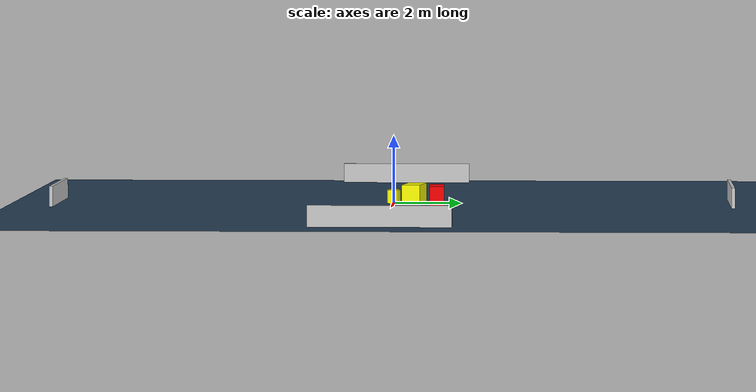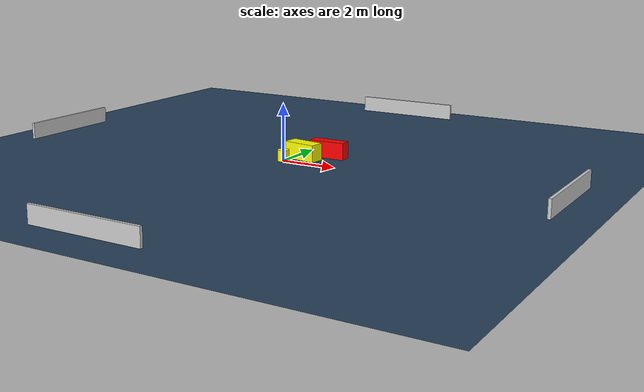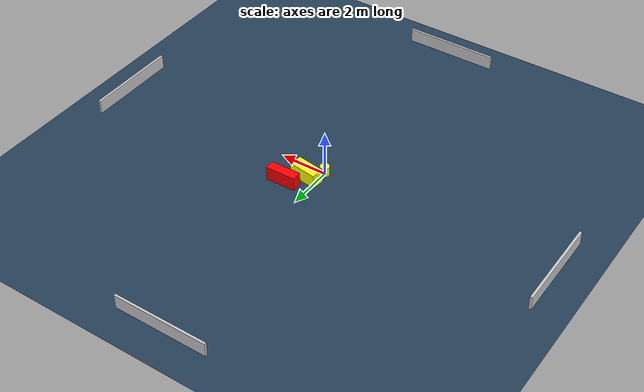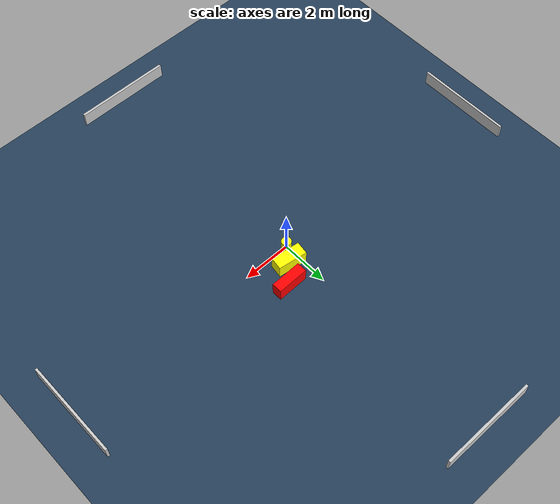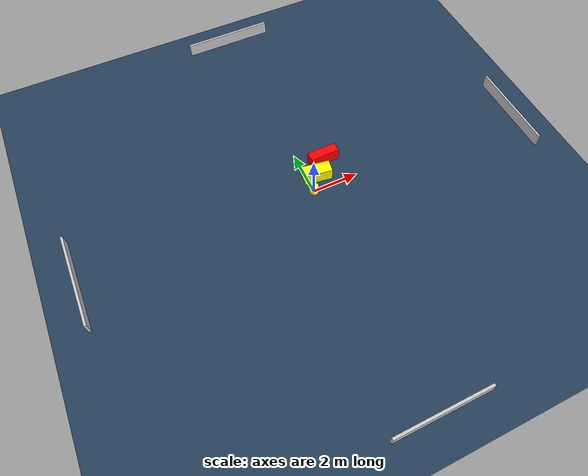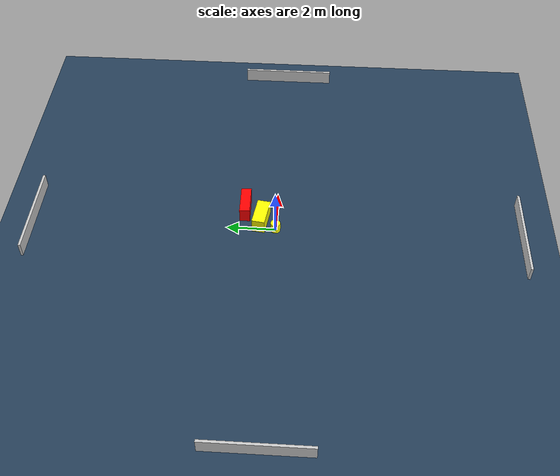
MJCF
<?xml version="1.0" ?>
<mujoco model="generated_environment">
  <option timestep="0.01" integrator="RK4" cone="elliptic"/>
  <default>
    <geom density="1"/>
  </default>
  <asset>
    <texture builtin="gradient" height="3072" name="skybox" rgb1="0.3 0.5 0.7" rgb2="0 0 0" type="skybox" width="512"/>
    <texture builtin="checker" height="300" name="groundplane" rgb1="0.2 0.3 0.4" rgb2="0.1 0.2 0.3" type="2d" width="300"/>
    <material name="groundplane" reflectance="0.2" texrepeat="5 5" texture="groundplane"/>
  </asset>
  <worldbody>
    <light dir="0 0 -1" directional="true" pos="0 0 1.5"/>
    <geom condim="3" friction="0.5 0.005 0.001" material="groundplane" name="floor" pos="0 0 0" size="0 0 0.05" type="plane"/>
    <body name="walls">
      <geom name="wall_1" condim="4" pos="-10.0 0.0 0.3" rgba="0.800000011920929 0.800000011920929 0.800000011920929 1.0" size="0.05 2.0 0.3" type="box"/>
      <geom name="wall_2" condim="4" pos="10.0 0.0 0.3" rgba="0.800000011920929 0.800000011920929 0.800000011920929 1.0" size="0.05 2.0 0.3" type="box"/>
      <geom name="wall_3" condim="4" pos="0.0 -10.0 0.3" rgba="0.800000011920929 0.800000011920929 0.800000011920929 1.0" size="2.0 0.05 0.3" type="box"/>
      <geom name="wall_4" condim="4" pos="0.0 10.0 0.3" rgba="0.800000011920929 0.800000011920929 0.800000011920929 1.0" size="2.0 0.05 0.3" type="box"/>
    </body>
    <body name="robot">
      <joint name="joint_x" type="slide" pos="0 0 0" axis="1 0 0"/>
      <joint name="joint_y" type="slide" pos="0 0 0" axis="0 1 0"/>
      <geom name="robot" type="cylinder" pos="0.0 0.0 0.2" size="0.2 0.2 0.0" mass="5.0" friction="1.0 0.005 0.0001" condim="4" rgba="1.0 1.0 0.0 1.0"/>
    </body>
    <body name="obstacle_1_movable">
      <geom name="obstacle_1_movable" condim="4" pos="0.44228942151817335 0.6193899626956691 0.3" euler="0 0 81.70284357344437" friction="0.0 0.005 0.001" rgba="1.0 1.0 0.0 1.0" size="0.26671153730936403 0.6030667790815756 0.3" type="box" mass="0.1"/>
      <joint type="free"/>
    </body>
    <body name="obstacle_2_static">
      <geom name="obstacle_2_static" condim="4" pos="1.071749956746914 1.3136723452528112 0.3" euler="0 0 181.17217310833655" friction="0.0 0.005 0.001" rgba="1.0 0.0 0.0 1.0" size="0.6456729291604335 0.20985369829838432 0.3" type="box"/>
    </body>
  </worldbody>
  <actuator>
    <motor name="actuator_x" joint="joint_x" gear="1" ctrlrange="-1 1"/>
    <motor name="actuator_y" joint="joint_y" gear="1" ctrlrange="-1 1"/>
  </actuator>
</mujoco>
